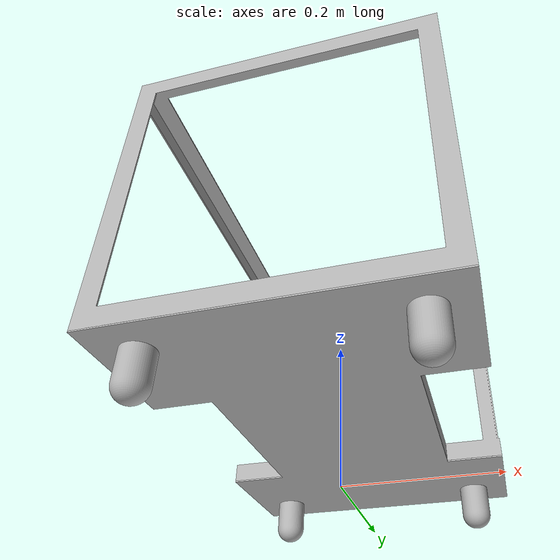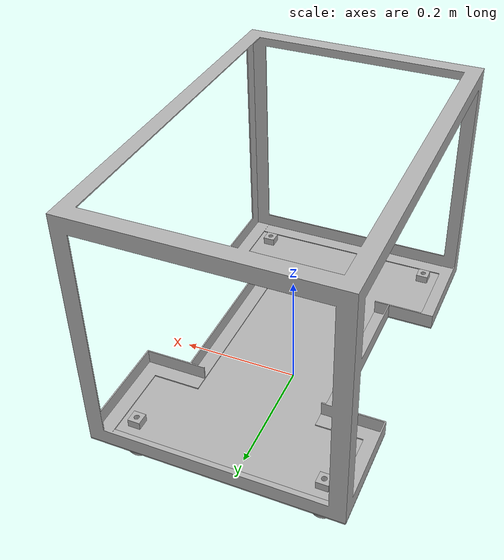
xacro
<?xml version="1.0" ?>
<robot name="Centaur_Frame_URDF" xmlns:xacro="http://www.ros.org/wiki/xacro">

<xacro:include filename="$(find Centaur_Frame_URDF_description)/urdf/materials.xacro" />
<xacro:include filename="$(find Centaur_Frame_URDF_description)/urdf/Centaur_Frame_URDF.trans" />
<xacro:include filename="$(find Centaur_Frame_URDF_description)/urdf/Centaur_Frame_URDF.gazebo" />
<link name="base_link">
  <inertial>
    <origin rpy="0 0 0" xyz="-5.0902174876003435e-06 -3.071086506139217e-07 0.071"/>
    <mass value="3.1566880672959843"/>
    <inertia ixx="0.109551" ixy="2e-06" ixz="0.0" iyy="0.033937" iyz="-0.0" izz="0.143485"/>
  </inertial>
  <visual>
    <origin rpy="0 0 0" xyz="0 0 0"/>
    <geometry>
      <mesh filename="package://Centaur_Frame_URDF_description/meshes/base_link.stl" scale="0.001 0.001 0.001"/>
    </geometry>
    <material name="silver"/>
  </visual>
  <collision>
    <origin rpy="0 0 0" xyz="0 0 0"/>
    <geometry>
      <mesh filename="package://Centaur_Frame_URDF_description/meshes/base_link.stl" scale="0.001 0.001 0.001"/>
    </geometry>
  </collision>
</link>

<link name="Frame_1">
  <inertial>
    <origin rpy="0 0 0" xyz="-0.17459999999999457 0.15239999999999432 0.2576750597802395"/>
    <mass value="4.323917657600147"/>
    <inertia ixx="0.381877" ixy="0.0" ixz="0.0" iyy="0.249814" iyz="0.0" izz="0.368988"/>
  </inertial>
  <visual>
    <origin rpy="0 0 0" xyz="-0.1746 0.1524 -0.002"/>
    <geometry>
      <mesh filename="package://Centaur_Frame_URDF_description/meshes/Frame_1.stl" scale="0.001 0.001 0.001"/>
    </geometry>
    <material name="silver"/>
  </visual>
  <collision>
    <origin rpy="0 0 0" xyz="-0.1746 0.1524 -0.002"/>
    <geometry>
      <mesh filename="package://Centaur_Frame_URDF_description/meshes/Frame_1.stl" scale="0.001 0.001 0.001"/>
    </geometry>
  </collision>
</link>

<link name="wheel_Lock__1___1___1__1">
  <inertial>
    <origin rpy="0 0 0" xyz="2.6047542733831364e-09 -4.341134701713045e-09 0.006500000000000006"/>
    <mass value="0.0350291722005078"/>
    <inertia ixx="2e-06" ixy="0.0" ixz="0.0" iyy="2e-06" iyz="0.0" izz="3e-06"/>
  </inertial>
  <visual>
    <origin rpy="0 0 0" xyz="0.15 -0.25 -0.072"/>
    <geometry>
      <mesh filename="package://Centaur_Frame_URDF_description/meshes/wheel_Lock__1___1___1__1.stl" scale="0.001 0.001 0.001"/>
    </geometry>
    <material name="silver"/>
  </visual>
  <collision>
    <origin rpy="0 0 0" xyz="0.15 -0.25 -0.072"/>
    <geometry>
      <mesh filename="package://Centaur_Frame_URDF_description/meshes/wheel_Lock__1___1___1__1.stl" scale="0.001 0.001 0.001"/>
    </geometry>
  </collision>
</link>

<link name="wheel_Lock__1___1__1">
  <inertial>
    <origin rpy="0 0 0" xyz="2.604754301138712e-09 -4.341134701713045e-09 0.006500000000000006"/>
    <mass value="0.0350291722005078"/>
    <inertia ixx="2e-06" ixy="0.0" ixz="0.0" iyy="2e-06" iyz="0.0" izz="3e-06"/>
  </inertial>
  <visual>
    <origin rpy="0 0 0" xyz="-0.15 -0.25 -0.072"/>
    <geometry>
      <mesh filename="package://Centaur_Frame_URDF_description/meshes/wheel_Lock__1___1__1.stl" scale="0.001 0.001 0.001"/>
    </geometry>
    <material name="silver"/>
  </visual>
  <collision>
    <origin rpy="0 0 0" xyz="-0.15 -0.25 -0.072"/>
    <geometry>
      <mesh filename="package://Centaur_Frame_URDF_description/meshes/wheel_Lock__1___1__1.stl" scale="0.001 0.001 0.001"/>
    </geometry>
  </collision>
</link>

<link name="wheel_Lock__1__1">
  <inertial>
    <origin rpy="0 0 0" xyz="2.6047542733831364e-09 -4.341134729468621e-09 0.006500000000000006"/>
    <mass value="0.0350291722005078"/>
    <inertia ixx="2e-06" ixy="-0.0" ixz="0.0" iyy="2e-06" iyz="0.0" izz="3e-06"/>
  </inertial>
  <visual>
    <origin rpy="0 0 0" xyz="0.15 0.25 -0.072"/>
    <geometry>
      <mesh filename="package://Centaur_Frame_URDF_description/meshes/wheel_Lock__1__1.stl" scale="0.001 0.001 0.001"/>
    </geometry>
    <material name="silver"/>
  </visual>
  <collision>
    <origin rpy="0 0 0" xyz="0.15 0.25 -0.072"/>
    <geometry>
      <mesh filename="package://Centaur_Frame_URDF_description/meshes/wheel_Lock__1__1.stl" scale="0.001 0.001 0.001"/>
    </geometry>
  </collision>
</link>

<link name="wheel_Lock_1">
  <inertial>
    <origin rpy="0 0 0" xyz="2.604754301138712e-09 -4.341134729468621e-09 0.006500000000000006"/>
    <mass value="0.0350291722005078"/>
    <inertia ixx="2e-06" ixy="-0.0" ixz="0.0" iyy="2e-06" iyz="0.0" izz="3e-06"/>
  </inertial>
  <visual>
    <origin rpy="0 0 0" xyz="-0.15 0.25 -0.072"/>
    <geometry>
      <mesh filename="package://Centaur_Frame_URDF_description/meshes/wheel_Lock_1.stl" scale="0.001 0.001 0.001"/>
    </geometry>
    <material name="silver"/>
  </visual>
  <collision>
    <origin rpy="0 0 0" xyz="-0.15 0.25 -0.072"/>
    <geometry>
      <mesh filename="package://Centaur_Frame_URDF_description/meshes/wheel_Lock_1.stl" scale="0.001 0.001 0.001"/>
    </geometry>
  </collision>
</link>

<link name="falseCaster_1">
  <inertial>
    <origin rpy="0 0 0" xyz="-5.551115123125783e-17 5.551115123125783e-17 -0.02694476618833587"/>
    <mass value="0.558921991463318"/>
    <inertia ixx="0.000195" ixy="-0.0" ixz="-0.0" iyy="0.000195" iyz="0.0" izz="0.000113"/>
  </inertial>
  <visual>
    <origin rpy="0 0 0" xyz="0.15 -0.25 -0.07"/>
    <geometry>
      <mesh filename="package://Centaur_Frame_URDF_description/meshes/falseCaster_1.stl" scale="0.001 0.001 0.001"/>
    </geometry>
    <material name="silver"/>
  </visual>
  <collision>
    <origin rpy="0 0 0" xyz="0.15 -0.25 -0.07"/>
    <geometry>
      <mesh filename="package://Centaur_Frame_URDF_description/meshes/falseCaster_1.stl" scale="0.001 0.001 0.001"/>
    </geometry>
  </collision>
</link>

<link name="falseCaster__1__1">
  <inertial>
    <origin rpy="0 0 0" xyz="5.551115123125783e-17 0.0 -0.026944766188335884"/>
    <mass value="0.558921991463318"/>
    <inertia ixx="0.000195" ixy="0.0" ixz="0.0" iyy="0.000195" iyz="-0.0" izz="0.000113"/>
  </inertial>
  <visual>
    <origin rpy="0 0 0" xyz="-0.15 -0.25 -0.07"/>
    <geometry>
      <mesh filename="package://Centaur_Frame_URDF_description/meshes/falseCaster__1__1.stl" scale="0.001 0.001 0.001"/>
    </geometry>
    <material name="silver"/>
  </visual>
  <collision>
    <origin rpy="0 0 0" xyz="-0.15 -0.25 -0.07"/>
    <geometry>
      <mesh filename="package://Centaur_Frame_URDF_description/meshes/falseCaster__1__1.stl" scale="0.001 0.001 0.001"/>
    </geometry>
  </collision>
</link>

<link name="falseCaster__1___1__1">
  <inertial>
    <origin rpy="0 0 0" xyz="-5.551115123125783e-17 0.0 -0.02694476618833587"/>
    <mass value="0.558921991463318"/>
    <inertia ixx="0.000195" ixy="0.0" ixz="-0.0" iyy="0.000195" iyz="-0.0" izz="0.000113"/>
  </inertial>
  <visual>
    <origin rpy="0 0 0" xyz="0.15 0.25 -0.07"/>
    <geometry>
      <mesh filename="package://Centaur_Frame_URDF_description/meshes/falseCaster__1___1__1.stl" scale="0.001 0.001 0.001"/>
    </geometry>
    <material name="silver"/>
  </visual>
  <collision>
    <origin rpy="0 0 0" xyz="0.15 0.25 -0.07"/>
    <geometry>
      <mesh filename="package://Centaur_Frame_URDF_description/meshes/falseCaster__1___1__1.stl" scale="0.001 0.001 0.001"/>
    </geometry>
  </collision>
</link>

<link name="falseCaster__1___1___1__1">
  <inertial>
    <origin rpy="0 0 0" xyz="5.551115123125783e-17 2.7755575615628914e-17 -0.026944766188335884"/>
    <mass value="0.558921991463318"/>
    <inertia ixx="0.000195" ixy="0.0" ixz="0.0" iyy="0.000195" iyz="0.0" izz="0.000113"/>
  </inertial>
  <visual>
    <origin rpy="0 0 0" xyz="-0.15 0.25 -0.07"/>
    <geometry>
      <mesh filename="package://Centaur_Frame_URDF_description/meshes/falseCaster__1___1___1__1.stl" scale="0.001 0.001 0.001"/>
    </geometry>
    <material name="silver"/>
  </visual>
  <collision>
    <origin rpy="0 0 0" xyz="-0.15 0.25 -0.07"/>
    <geometry>
      <mesh filename="package://Centaur_Frame_URDF_description/meshes/falseCaster__1___1___1__1.stl" scale="0.001 0.001 0.001"/>
    </geometry>
  </collision>
</link>

<joint name="Rigid2" type="fixed">
  <origin rpy="0 0 0" xyz="0.1746 -0.1524 0.002"/>
  <parent link="base_link"/>
  <child link="Frame_1"/>
</joint>

<joint name="Rigid8" type="fixed">
  <origin rpy="0 0 0" xyz="-0.15 0.25 0.072"/>
  <parent link="base_link"/>
  <child link="wheel_Lock__1___1___1__1"/>
</joint>

<joint name="Rigid9" type="fixed">
  <origin rpy="0 0 0" xyz="0.15 0.25 0.072"/>
  <parent link="base_link"/>
  <child link="wheel_Lock__1___1__1"/>
</joint>

<joint name="Rigid10" type="fixed">
  <origin rpy="0 0 0" xyz="-0.15 -0.25 0.072"/>
  <parent link="base_link"/>
  <child link="wheel_Lock__1__1"/>
</joint>

<joint name="Rigid11" type="fixed">
  <origin rpy="0 0 0" xyz="0.15 -0.25 0.072"/>
  <parent link="base_link"/>
  <child link="wheel_Lock_1"/>
</joint>

<joint name="Rigid15" type="fixed">
  <origin rpy="0 0 0" xyz="-0.15 0.25 0.07"/>
  <parent link="base_link"/>
  <child link="falseCaster_1"/>
</joint>

<joint name="Rigid16" type="fixed">
  <origin rpy="0 0 0" xyz="0.15 0.25 0.07"/>
  <parent link="base_link"/>
  <child link="falseCaster__1__1"/>
</joint>

<joint name="Rigid17" type="fixed">
  <origin rpy="0 0 0" xyz="-0.15 -0.25 0.07"/>
  <parent link="base_link"/>
  <child link="falseCaster__1___1__1"/>
</joint>

<joint name="Rigid18" type="fixed">
  <origin rpy="0 0 0" xyz="0.15 -0.25 0.07"/>
  <parent link="base_link"/>
  <child link="falseCaster__1___1___1__1"/>
</joint>

</robot>

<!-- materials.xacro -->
<robot name="Centaur_Frame_URDF" xmlns:xacro="http://www.ros.org/wiki/xacro" >

<material name="silver">
  <color rgba="0.700 0.700 0.700 1.000"/>
</material>

</robot>

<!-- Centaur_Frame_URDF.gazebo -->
<robot name="Centaur_Frame_URDF" xmlns:xacro="http://www.ros.org/wiki/xacro" >

<xacro:property name="body_color" value="Gazebo/Silver" />

<gazebo>
  <plugin filename="libgazebo_ros_control.so" name="control"/>
</gazebo>
<gazebo reference="base_link">
  <material>${body_color}</material>
  <mu1>0.2</mu1>
  <mu2>0.2</mu2>
  <selfCollide>true</selfCollide>
  <gravity>true</gravity>
</gazebo>

<gazebo reference="Frame_1">
  <material>${body_color}</material>
  <mu1>0.2</mu1>
  <mu2>0.2</mu2>
  <selfCollide>true</selfCollide>
</gazebo>

<gazebo reference="wheel_Lock__1___1___1__1">
  <material>${body_color}</material>
  <mu1>0.2</mu1>
  <mu2>0.2</mu2>
  <selfCollide>true</selfCollide>
</gazebo>

<gazebo reference="wheel_Lock__1___1__1">
  <material>${body_color}</material>
  <mu1>0.2</mu1>
  <mu2>0.2</mu2>
  <selfCollide>true</selfCollide>
</gazebo>

<gazebo reference="wheel_Lock__1__1">
  <material>${body_color}</material>
  <mu1>0.2</mu1>
  <mu2>0.2</mu2>
  <selfCollide>true</selfCollide>
</gazebo>

<gazebo reference="wheel_Lock_1">
  <material>${body_color}</material>
  <mu1>0.2</mu1>
  <mu2>0.2</mu2>
  <selfCollide>true</selfCollide>
</gazebo>

<gazebo reference="falseCaster_1">
  <material>${body_color}</material>
  <mu1>0.2</mu1>
  <mu2>0.2</mu2>
  <selfCollide>true</selfCollide>
</gazebo>

<gazebo reference="falseCaster__1__1">
  <material>${body_color}</material>
  <mu1>0.2</mu1>
  <mu2>0.2</mu2>
  <selfCollide>true</selfCollide>
</gazebo>

<gazebo reference="falseCaster__1___1__1">
  <material>${body_color}</material>
  <mu1>0.2</mu1>
  <mu2>0.2</mu2>
  <selfCollide>true</selfCollide>
</gazebo>

<gazebo reference="falseCaster__1___1___1__1">
  <material>${body_color}</material>
  <mu1>0.2</mu1>
  <mu2>0.2</mu2>
  <selfCollide>true</selfCollide>
</gazebo>

</robot>
